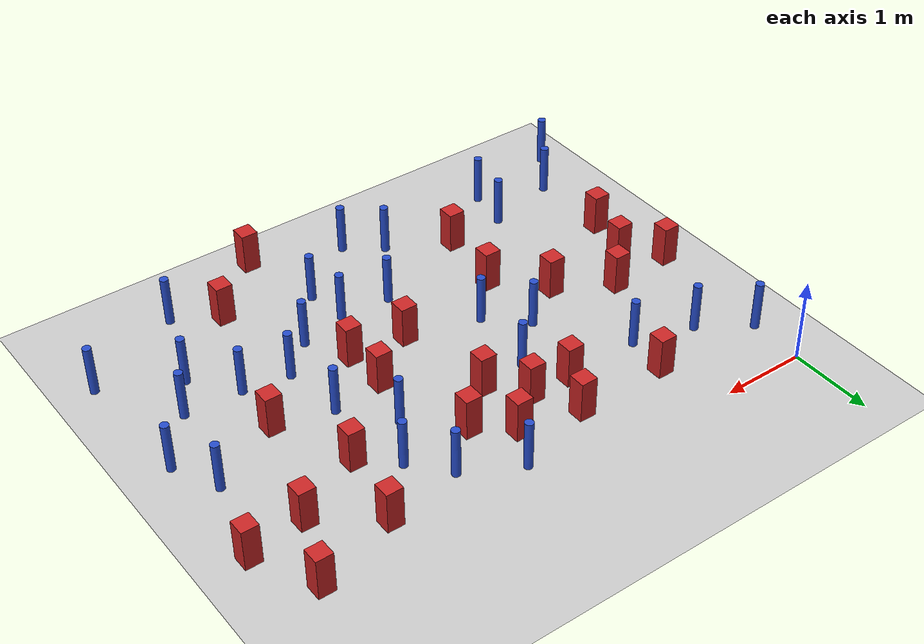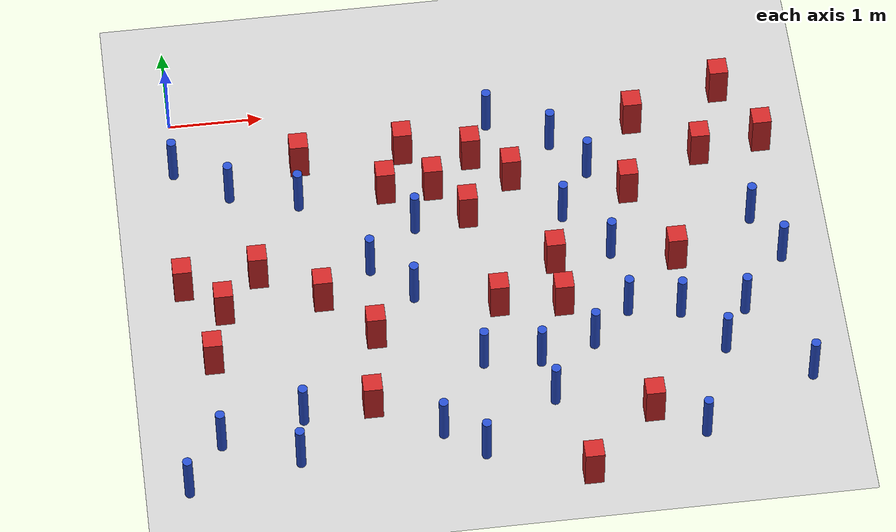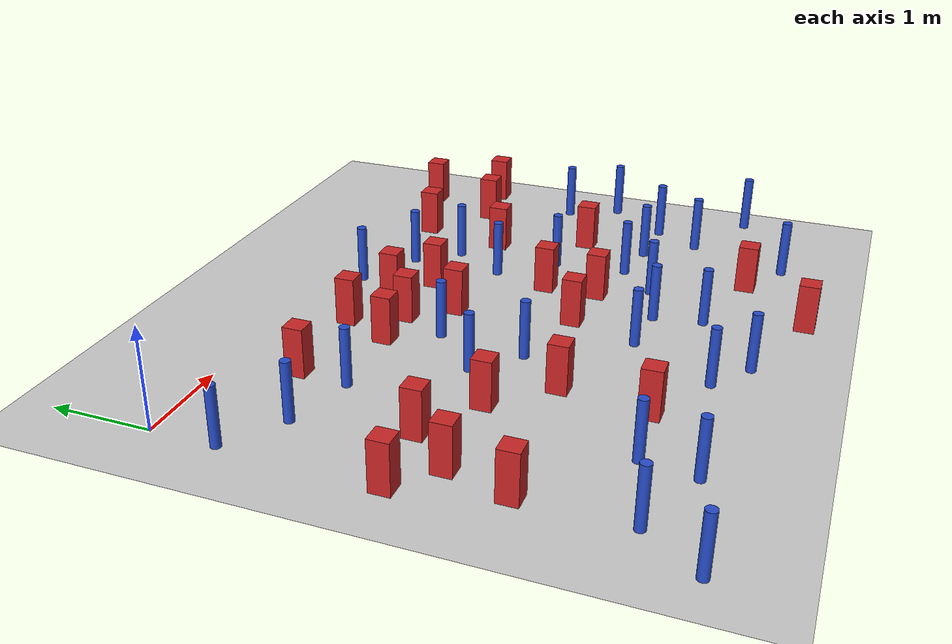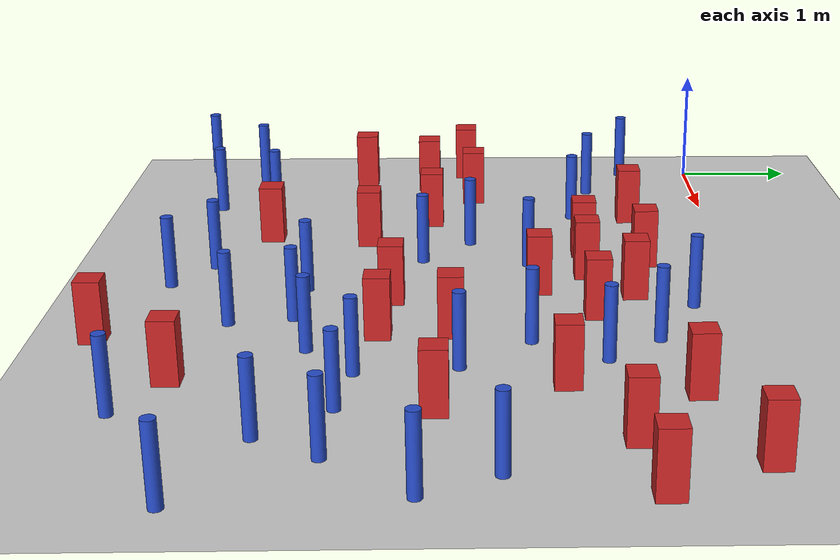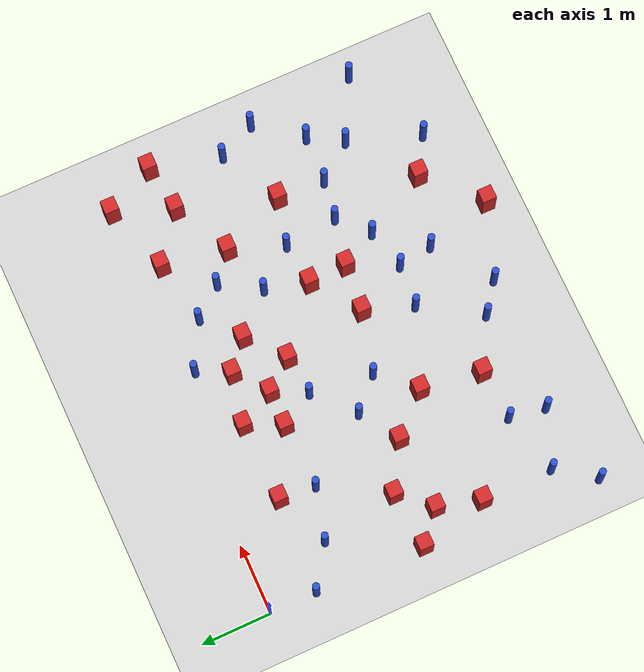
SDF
<sdf version="1.6">
 <world name="default">
  <model name="ground_plane">
   <static>1</static>
   <link name="link">
    <collision name="collision">
     <geometry><plane><normal>0 0 1</normal><size>100 100</size></plane></geometry>
     <surface><friction><ode><mu>100</mu><mu2>50</mu2></ode></friction></surface>
    </collision>
    <visual name="visual">
     <cast_shadows>0</cast_shadows>
     <geometry><plane><normal>0 0 1</normal><size>100 100</size></plane></geometry>
     <material>
      <ambient>1.0 1.0 1.0 1.0</ambient>
      <diffuse>0.8 0.8 0.8 1.0</diffuse>
      <specular>0.01 0.01 0.01 1.000000</specular>
     </material>
    </visual>
   </link>
  </model>
  <model name="square_post_obstacle12">
   <static>true</static>
   <pose>3.16215896326 -0.851828893414 1.91545236811e-07 -7.35059704564e-06 1.12565212e-07 2.39332434364e-05</pose>
   <link name="link">
    <pose>0 0 0.25 0 -0 0</pose>
    <inertial>
     <mass>100</mass>
     <inertia>
      <ixx>0.166667</ixx>
      <ixy>0</ixy>
      <ixz>0</ixz>
      <iyy>0.166667</iyy>
      <iyz>0</iyz>
      <izz>0.166667</izz>
     </inertia>
    </inertial>
    <collision name="collision"><geometry><box><size>.2 .2 .5</size></box></geometry></collision>
    <visual name="visual">
     <geometry><box><size>.2 .2 .5</size></box></geometry>
     <material>
      <script><name>Gazebo/Red</name><uri>file://media/materials/scripts/gazebo.material</uri></script>
     </material>
    </visual>
   </link>
  </model>
  <model name="square_post_obstacle13">
   <static>true</static>
   <pose>2.21254775683 -1.19619095075 1.91545236811e-07 -7.35059704564e-06 1.12565212e-07 2.39332434364e-05</pose>
   <link name="link">
    <pose>0 0 0.25 0 -0 0</pose>
    <inertial>
     <mass>100</mass>
     <inertia>
      <ixx>0.166667</ixx>
      <ixy>0</ixy>
      <ixz>0</ixz>
      <iyy>0.166667</iyy>
      <iyz>0</iyz>
      <izz>0.166667</izz>
     </inertia>
    </inertial>
    <collision name="collision"><geometry><box><size>.2 .2 .5</size></box></geometry></collision>
    <visual name="visual">
     <geometry><box><size>.2 .2 .5</size></box></geometry>
     <material>
      <script><name>Gazebo/Red</name><uri>file://media/materials/scripts/gazebo.material</uri></script>
     </material>
    </visual>
   </link>
  </model>
  <model name="square_post_obstacle17">
   <static>true</static>
   <pose>4.93993323977 -0.584105912174 1.91545236811e-07 -7.35059704564e-06 1.12565212e-07 2.39332434364e-05</pose>
   <link name="link">
    <pose>0 0 0.25 0 -0 0</pose>
    <inertial>
     <mass>100</mass>
     <inertia>
      <ixx>0.166667</ixx>
      <ixy>0</ixy>
      <ixz>0</ixz>
      <iyy>0.166667</iyy>
      <iyz>0</iyz>
      <izz>0.166667</izz>
     </inertia>
    </inertial>
    <collision name="collision"><geometry><box><size>.2 .2 .5</size></box></geometry></collision>
    <visual name="visual">
     <geometry><box><size>.2 .2 .5</size></box></geometry>
     <material>
      <script><name>Gazebo/Red</name><uri>file://media/materials/scripts/gazebo.material</uri></script>
     </material>
    </visual>
   </link>
  </model>
  <model name="pole_obstacle14">
   <static>true</static>
   <pose>-0.192761047995 -4.72084093875 7.38925637345e-09 -8.47170692799e-08 1.24976765068e-08 -1.74513093018e-07</pose>
   <link name="link">
    <pose>0 0 0.3 0 -0 0</pose>
    <inertial>
     <mass>1</mass>
     <inertia><ixx>0.145833</ixx><ixy>0</ixy><ixz>0</ixz><iyy>0.145833</iyy><iyz>0</iyz><izz>0.125</izz></inertia>
    </inertial>
    <collision name="collision">
     <geometry><cylinder><radius>0.05</radius><length>.6</length></cylinder></geometry>
    </collision>
    <visual name="visual">
     <geometry><cylinder><radius>0.05</radius><length>.6</length></cylinder></geometry>
     <material>
      <script><name>Gazebo/Blue</name><uri>file://media/materials/scripts/gazebo.material</uri></script>
     </material>
    </visual>
   </link>
  </model>
  <model name="square_post_obstacle24">
   <static>true</static>
   <pose>-0.0370714918468 -2.20190636774 1.91545236811e-07 -7.35059704564e-06 1.12565212e-07 2.39332434364e-05</pose>
   <link name="link">
    <pose>0 0 0.25 0 -0 0</pose>
    <inertial>
     <mass>100</mass>
     <inertia>
      <ixx>0.166667</ixx>
      <ixy>0</ixy>
      <ixz>0</ixz>
      <iyy>0.166667</iyy>
      <iyz>0</iyz>
      <izz>0.166667</izz>
     </inertia>
    </inertial>
    <collision name="collision"><geometry><box><size>.2 .2 .5</size></box></geometry></collision>
    <visual name="visual">
     <geometry><box><size>.2 .2 .5</size></box></geometry>
     <material>
      <script><name>Gazebo/Red</name><uri>file://media/materials/scripts/gazebo.material</uri></script>
     </material>
    </visual>
   </link>
  </model>
  <model name="square_post_obstacle25">
   <static>true</static>
   <pose>1.90954830478 -3.0507660724 1.91545236811e-07 -7.35059704564e-06 1.12565212e-07 2.39332434364e-05</pose>
   <link name="link">
    <pose>0 0 0.25 0 -0 0</pose>
    <inertial>
     <mass>100</mass>
     <inertia>
      <ixx>0.166667</ixx>
      <ixy>0</ixy>
      <ixz>0</ixz>
      <iyy>0.166667</iyy>
      <iyz>0</iyz>
      <izz>0.166667</izz>
     </inertia>
    </inertial>
    <collision name="collision"><geometry><box><size>.2 .2 .5</size></box></geometry></collision>
    <visual name="visual">
     <geometry><box><size>.2 .2 .5</size></box></geometry>
     <material>
      <script><name>Gazebo/Red</name><uri>file://media/materials/scripts/gazebo.material</uri></script>
     </material>
    </visual>
   </link>
  </model>
  <model name="pole_obstacle29">
   <static>true</static>
   <pose>0.557280738302 -1.03713041273 7.38925637345e-09 -8.47170692799e-08 1.24976765037e-08 -1.74513093019e-07</pose>
   <link name="link">
    <pose>0 0 0.3 0 -0 0</pose>
    <inertial>
     <mass>1</mass>
     <inertia><ixx>0.145833</ixx><ixy>0</ixy><ixz>0</ixz><iyy>0.145833</iyy><iyz>0</iyz><izz>0.125</izz></inertia>
    </inertial>
    <collision name="collision">
     <geometry><cylinder><radius>0.05</radius><length>.6</length></cylinder></geometry>
    </collision>
    <visual name="visual">
     <geometry><cylinder><radius>0.05</radius><length>.6</length></cylinder></geometry>
     <material>
      <script><name>Gazebo/Blue</name><uri>file://media/materials/scripts/gazebo.material</uri></script>
     </material>
    </visual>
   </link>
  </model>
  <model name="pole_obstacle51">
   <static>true</static>
   <pose>1.94644630929 -2.16776729743 7.38925637345e-09 -8.47170692799e-08 1.24976765053e-08 -1.74513093017e-07</pose>
   <link name="link">
    <pose>0 0 0.3 0 -0 0</pose>
    <inertial>
     <mass>1</mass>
     <inertia><ixx>0.145833</ixx><ixy>0</ixy><ixz>0</ixz><iyy>0.145833</iyy><iyz>0</iyz><izz>0.125</izz></inertia>
    </inertial>
    <collision name="collision">
     <geometry><cylinder><radius>0.05</radius><length>.6</length></cylinder></geometry>
    </collision>
    <visual name="visual">
     <geometry><cylinder><radius>0.05</radius><length>.6</length></cylinder></geometry>
     <material>
      <script><name>Gazebo/Blue</name><uri>file://media/materials/scripts/gazebo.material</uri></script>
     </material>
    </visual>
   </link>
  </model>
  <model name="pole_obstacle56">
   <static>true</static>
   <pose>5.52481239268 -3.60699303117 7.38925637345e-09 -8.47170692798e-08 1.24976764937e-08 -1.74513093023e-07</pose>
   <link name="link">
    <pose>0 0 0.3 0 -0 0</pose>
    <inertial>
     <mass>1</mass>
     <inertia><ixx>0.145833</ixx><ixy>0</ixy><ixz>0</ixz><iyy>0.145833</iyy><iyz>0</iyz><izz>0.125</izz></inertia>
    </inertial>
    <collision name="collision">
     <geometry><cylinder><radius>0.05</radius><length>.6</length></cylinder></geometry>
    </collision>
    <visual name="visual">
     <geometry><cylinder><radius>0.05</radius><length>.6</length></cylinder></geometry>
     <material>
      <script><name>Gazebo/Blue</name><uri>file://media/materials/scripts/gazebo.material</uri></script>
     </material>
    </visual>
   </link>
  </model>
  <model name="pole_obstacle59">
   <static>true</static>
   <pose>1.05890238541 -3.9743473748 7.38925637345e-09 -8.471706928e-08 1.24976765103e-08 -1.74513093014e-07</pose>
   <link name="link">
    <pose>0 0 0.3 0 -0 0</pose>
    <inertial>
     <mass>1</mass>
     <inertia><ixx>0.145833</ixx><ixy>0</ixy><ixz>0</ixz><iyy>0.145833</iyy><iyz>0</iyz><izz>0.125</izz></inertia>
    </inertial>
    <collision name="collision">
     <geometry><cylinder><radius>0.05</radius><length>.6</length></cylinder></geometry>
    </collision>
    <visual name="visual">
     <geometry><cylinder><radius>0.05</radius><length>.6</length></cylinder></geometry>
     <material>
      <script><name>Gazebo/Blue</name><uri>file://media/materials/scripts/gazebo.material</uri></script>
     </material>
    </visual>
   </link>
  </model>
  <model name="pole_obstacle63">
   <static>true</static>
   <pose>6.37486377922 -4.04856052572 7.38925637345e-09 -8.47170692796e-08 1.24976764791e-08 -1.74513093031e-07</pose>
   <link name="link">
    <pose>0 0 0.3 0 -0 0</pose>
    <inertial>
     <mass>1</mass>
     <inertia><ixx>0.145833</ixx><ixy>0</ixy><ixz>0</ixz><iyy>0.145833</iyy><iyz>0</iyz><izz>0.125</izz></inertia>
    </inertial>
    <collision name="collision">
     <geometry><cylinder><radius>0.05</radius><length>.6</length></cylinder></geometry>
    </collision>
    <visual name="visual">
     <geometry><cylinder><radius>0.05</radius><length>.6</length></cylinder></geometry>
     <material>
      <script><name>Gazebo/Blue</name><uri>file://media/materials/scripts/gazebo.material</uri></script>
     </material>
    </visual>
   </link>
  </model>
  <model name="square_post_obstacle67">
   <static>true</static>
   <pose>0.364031468398 -2.55769582153 1.91545236811e-07 -7.35059704564e-06 1.12565212e-07 2.39332434364e-05</pose>
   <link name="link">
    <pose>0 0 0.25 0 -0 0</pose>
    <inertial>
     <mass>100</mass>
     <inertia>
      <ixx>0.166667</ixx>
      <ixy>0</ixy>
      <ixz>0</ixz>
      <iyy>0.166667</iyy>
      <iyz>0</iyz>
      <izz>0.166667</izz>
     </inertia>
    </inertial>
    <collision name="collision"><geometry><box><size>.2 .2 .5</size></box></geometry></collision>
    <visual name="visual">
     <geometry><box><size>.2 .2 .5</size></box></geometry>
     <material>
      <script><name>Gazebo/Red</name><uri>file://media/materials/scripts/gazebo.material</uri></script>
     </material>
    </visual>
   </link>
  </model>
  <model name="pole_obstacle69">
   <static>true</static>
   <pose>2.47459224412 -4.31536995979 7.38925637345e-09 -8.47170692798e-08 1.24976765033e-08 -1.74513093019e-07</pose>
   <link name="link">
    <pose>0 0 0.3 0 -0 0</pose>
    <inertial>
     <mass>1</mass>
     <inertia><ixx>0.145833</ixx><ixy>0</ixy><ixz>0</ixz><iyy>0.145833</iyy><iyz>0</iyz><izz>0.125</izz></inertia>
    </inertial>
    <collision name="collision">
     <geometry><cylinder><radius>0.05</radius><length>.6</length></cylinder></geometry>
    </collision>
    <visual name="visual">
     <geometry><cylinder><radius>0.05</radius><length>.6</length></cylinder></geometry>
     <material>
      <script><name>Gazebo/Blue</name><uri>file://media/materials/scripts/gazebo.material</uri></script>
     </material>
    </visual>
   </link>
  </model>
  <model name="pole_obstacle71">
   <static>true</static>
   <pose>5.79900119219 -3.13846601403 7.38925637345e-09 -8.47170692798e-08 1.24976764937e-08 -1.74513093023e-07</pose>
   <link name="link">
    <pose>0 0 0.3 0 -0 0</pose>
    <inertial>
     <mass>1</mass>
     <inertia><ixx>0.145833</ixx><ixy>0</ixy><ixz>0</ixz><iyy>0.145833</iyy><iyz>0</iyz><izz>0.125</izz></inertia>
    </inertial>
    <collision name="collision">
     <geometry><cylinder><radius>0.05</radius><length>.6</length></cylinder></geometry>
    </collision>
    <visual name="visual">
     <geometry><cylinder><radius>0.05</radius><length>.6</length></cylinder></geometry>
     <material>
      <script><name>Gazebo/Blue</name><uri>file://media/materials/scripts/gazebo.material</uri></script>
     </material>
    </visual>
   </link>
  </model>
  <model name="pole_obstacle72">
   <static>true</static>
   <pose>2.99181409538 -3.49242293006 7.38925637345e-09 -8.47170692798e-08 1.24976764939e-08 -1.74513093025e-07</pose>
   <link name="link">
    <pose>0 0 0.3 0 -0 0</pose>
    <inertial>
     <mass>1</mass>
     <inertia><ixx>0.145833</ixx><ixy>0</ixy><ixz>0</ixz><iyy>0.145833</iyy><iyz>0</iyz><izz>0.125</izz></inertia>
    </inertial>
    <collision name="collision">
     <geometry><cylinder><radius>0.05</radius><length>.6</length></cylinder></geometry>
    </collision>
    <visual name="visual">
     <geometry><cylinder><radius>0.05</radius><length>.6</length></cylinder></geometry>
     <material>
      <script><name>Gazebo/Blue</name><uri>file://media/materials/scripts/gazebo.material</uri></script>
     </material>
    </visual>
   </link>
  </model>
  <model name="pole_obstacle75">
   <static>true</static>
   <pose>4.49496236078 -2.25572692038 7.38925637345e-09 -8.47170692798e-08 1.24976764937e-08 -1.74513093023e-07</pose>
   <link name="link">
    <pose>0 0 0.3 0 -0 0</pose>
    <inertial>
     <mass>1</mass>
     <inertia><ixx>0.145833</ixx><ixy>0</ixy><ixz>0</ixz><iyy>0.145833</iyy><iyz>0</iyz><izz>0.125</izz></inertia>
    </inertial>
    <collision name="collision">
     <geometry><cylinder><radius>0.05</radius><length>.6</length></cylinder></geometry>
    </collision>
    <visual name="visual">
     <geometry><cylinder><radius>0.05</radius><length>.6</length></cylinder></geometry>
     <material>
      <script><name>Gazebo/Blue</name><uri>file://media/materials/scripts/gazebo.material</uri></script>
     </material>
    </visual>
   </link>
  </model>
  <model name="square_post_obstacle77">
   <static>true</static>
   <pose>0.196807844034 -3.16989307366 1.91545236811e-07 -7.35059704564e-06 1.12565212e-07 2.39332434364e-05</pose>
   <link name="link">
    <pose>0 0 0.25 0 -0 0</pose>
    <inertial>
     <mass>100</mass>
     <inertia>
      <ixx>0.166667</ixx>
      <ixy>0</ixy>
      <ixz>0</ixz>
      <iyy>0.166667</iyy>
      <iyz>0</iyz>
      <izz>0.166667</izz>
     </inertia>
    </inertial>
    <collision name="collision"><geometry><box><size>.2 .2 .5</size></box></geometry></collision>
    <visual name="visual">
     <geometry><box><size>.2 .2 .5</size></box></geometry>
     <material>
      <script><name>Gazebo/Red</name><uri>file://media/materials/scripts/gazebo.material</uri></script>
     </material>
    </visual>
   </link>
  </model>
  <model name="pole_obstacle79">
   <static>true</static>
   <pose>3.39210028791 -0.403522626479 7.38925637345e-09 -8.471706928e-08 1.24976765172e-08 -1.74513093013e-07</pose>
   <link name="link">
    <pose>0 0 0.3 0 -0 0</pose>
    <inertial>
     <mass>1</mass>
     <inertia><ixx>0.145833</ixx><ixy>0</ixy><ixz>0</ixz><iyy>0.145833</iyy><iyz>0</iyz><izz>0.125</izz></inertia>
    </inertial>
    <collision name="collision">
     <geometry><cylinder><radius>0.05</radius><length>.6</length></cylinder></geometry>
    </collision>
    <visual name="visual">
     <geometry><cylinder><radius>0.05</radius><length>.6</length></cylinder></geometry>
     <material>
      <script><name>Gazebo/Blue</name><uri>file://media/materials/scripts/gazebo.material</uri></script>
     </material>
    </visual>
   </link>
  </model>
  <model name="pole_obstacle87">
   <static>true</static>
   <pose>4.38406763411 -1.16810369598 7.38925637345e-09 -8.471706928e-08 1.24976765134e-08 -1.74513093015e-07</pose>
   <link name="link">
    <pose>0 0 0.3 0 -0 0</pose>
    <inertial>
     <mass>1</mass>
     <inertia><ixx>0.145833</ixx><ixy>0</ixy><ixz>0</ixz><iyy>0.145833</iyy><iyz>0</iyz><izz>0.125</izz></inertia>
    </inertial>
    <collision name="collision">
     <geometry><cylinder><radius>0.05</radius><length>.6</length></cylinder></geometry>
    </collision>
    <visual name="visual">
     <geometry><cylinder><radius>0.05</radius><length>.6</length></cylinder></geometry>
     <material>
      <script><name>Gazebo/Blue</name><uri>file://media/materials/scripts/gazebo.material</uri></script>
     </material>
    </visual>
   </link>
  </model>
  <model name="square_post_obstacle86">
   <static>true</static>
   <pose>6.28317286158 -0.984443088483 1.91545236811e-07 -7.35059704564e-06 1.12565212e-07 2.39332434364e-05</pose>
   <link name="link">
    <pose>0 0 0.25 0 -0 0</pose>
    <inertial>
     <mass>100</mass>
     <inertia>
      <ixx>0.166667</ixx>
      <ixy>0</ixy>
      <ixz>0</ixz>
      <iyy>0.166667</iyy>
      <iyz>0</iyz>
      <izz>0.166667</izz>
     </inertia>
    </inertial>
    <collision name="collision"><geometry><box><size>.2 .2 .5</size></box></geometry></collision>
    <visual name="visual">
     <geometry><box><size>.2 .2 .5</size></box></geometry>
     <material>
      <script><name>Gazebo/Red</name><uri>file://media/materials/scripts/gazebo.material</uri></script>
     </material>
    </visual>
   </link>
  </model>
  <model name="pole_obstacle101">
   <static>true</static>
   <pose>4.0364401352 -0.749233371579 7.38925637345e-09 -8.471706928e-08 1.24976765147e-08 -1.74513093015e-07</pose>
   <link name="link">
    <pose>0 0 0.3 0 -0 0</pose>
    <inertial>
     <mass>1</mass>
     <inertia><ixx>0.145833</ixx><ixy>0</ixy><ixz>0</ixz><iyy>0.145833</iyy><iyz>0</iyz><izz>0.125</izz></inertia>
    </inertial>
    <collision name="collision">
     <geometry><cylinder><radius>0.05</radius><length>.6</length></cylinder></geometry>
    </collision>
    <visual name="visual">
     <geometry><cylinder><radius>0.05</radius><length>.6</length></cylinder></geometry>
     <material>
      <script><name>Gazebo/Blue</name><uri>file://media/materials/scripts/gazebo.material</uri></script>
     </material>
    </visual>
   </link>
  </model>
  <model name="pole_obstacle108">
   <static>true</static>
   <pose>6.02685979798 -1.98142017567 7.38925637345e-09 -8.47170692801e-08 1.24976765219e-08 -1.74513093009e-07</pose>
   <link name="link">
    <pose>0 0 0.3 0 -0 0</pose>
    <inertial>
     <mass>1</mass>
     <inertia><ixx>0.145833</ixx><ixy>0</ixy><ixz>0</ixz><iyy>0.145833</iyy><iyz>0</iyz><izz>0.125</izz></inertia>
    </inertial>
    <collision name="collision">
     <geometry><cylinder><radius>0.05</radius><length>.6</length></cylinder></geometry>
    </collision>
    <visual name="visual">
     <geometry><cylinder><radius>0.05</radius><length>.6</length></cylinder></geometry>
     <material>
      <script><name>Gazebo/Blue</name><uri>file://media/materials/scripts/gazebo.material</uri></script>
     </material>
    </visual>
   </link>
  </model>
  <model name="pole_obstacle113">
   <static>true</static>
   <pose>2.88236965268 -4.61901614844 7.38925637345e-09 -8.47170692798e-08 1.24976765033e-08 -1.74513093019e-07</pose>
   <link name="link">
    <pose>0 0 0.3 0 -0 0</pose>
    <inertial>
     <mass>1</mass>
     <inertia><ixx>0.145833</ixx><ixy>0</ixy><ixz>0</ixz><iyy>0.145833</iyy><iyz>0</iyz><izz>0.125</izz></inertia>
    </inertial>
    <collision name="collision">
     <geometry><cylinder><radius>0.05</radius><length>.6</length></cylinder></geometry>
    </collision>
    <visual name="visual">
     <geometry><cylinder><radius>0.05</radius><length>.6</length></cylinder></geometry>
     <material>
      <script><name>Gazebo/Blue</name><uri>file://media/materials/scripts/gazebo.material</uri></script>
     </material>
    </visual>
   </link>
  </model>
  <model name="square_post_obstacle103">
   <static>true</static>
   <pose>5.60131226832 -1.08450716508 1.91545236811e-07 -7.35059704564e-06 1.12565212e-07 2.39332434364e-05</pose>
   <link name="link">
    <pose>0 0 0.25 0 -0 0</pose>
    <inertial>
     <mass>100</mass>
     <inertia>
      <ixx>0.166667</ixx>
      <ixy>0</ixy>
      <ixz>0</ixz>
      <iyy>0.166667</iyy>
      <iyz>0</iyz>
      <izz>0.166667</izz>
     </inertia>
    </inertial>
    <collision name="collision"><geometry><box><size>.2 .2 .5</size></box></geometry></collision>
    <visual name="visual">
     <geometry><box><size>.2 .2 .5</size></box></geometry>
     <material>
      <script><name>Gazebo/Red</name><uri>file://media/materials/scripts/gazebo.material</uri></script>
     </material>
    </visual>
   </link>
  </model>
  <model name="square_post_obstacle112">
   <static>true</static>
   <pose>1.33789278855 -0.72065602648 1.91545236811e-07 -7.35059704564e-06 1.12565212e-07 2.39332434364e-05</pose>
   <link name="link">
    <pose>0 0 0.25 0 -0 0</pose>
    <inertial>
     <mass>100</mass>
     <inertia>
      <ixx>0.166667</ixx>
      <ixy>0</ixy>
      <ixz>0</ixz>
      <iyy>0.166667</iyy>
      <iyz>0</iyz>
      <izz>0.166667</izz>
     </inertia>
    </inertial>
    <collision name="collision"><geometry><box><size>.2 .2 .5</size></box></geometry></collision>
    <visual name="visual">
     <geometry><box><size>.2 .2 .5</size></box></geometry>
     <material>
      <script><name>Gazebo/Red</name><uri>file://media/materials/scripts/gazebo.material</uri></script>
     </material>
    </visual>
   </link>
  </model>
  <model name="pole_obstacle135">
   <static>true</static>
   <pose>5.17050635692 -4.62187942249 7.38925637345e-09 -8.47170692796e-08 1.24976764786e-08 -1.74513093032e-07</pose>
   <link name="link">
    <pose>0 0 0.3 0 -0 0</pose>
    <inertial>
     <mass>1</mass>
     <inertia><ixx>0.145833</ixx><ixy>0</ixy><ixz>0</ixz><iyy>0.145833</iyy><iyz>0</iyz><izz>0.125</izz></inertia>
    </inertial>
    <collision name="collision">
     <geometry><cylinder><radius>0.05</radius><length>.6</length></cylinder></geometry>
    </collision>
    <visual name="visual">
     <geometry><cylinder><radius>0.05</radius><length>.6</length></cylinder></geometry>
     <material>
      <script><name>Gazebo/Blue</name><uri>file://media/materials/scripts/gazebo.material</uri></script>
     </material>
    </visual>
   </link>
  </model>
  <model name="square_post_obstacle120">
   <static>true</static>
   <pose>5.16645562176 -2.42343122033 1.91545236811e-07 -7.35059704564e-06 1.12565212e-07 2.39332434364e-05</pose>
   <link name="link">
    <pose>0 0 0.25 0 -0 0</pose>
    <inertial>
     <mass>100</mass>
     <inertia>
      <ixx>0.166667</ixx>
      <ixy>0</ixy>
      <ixz>0</ixz>
      <iyy>0.166667</iyy>
      <iyz>0</iyz>
      <izz>0.166667</izz>
     </inertia>
    </inertial>
    <collision name="collision"><geometry><box><size>.2 .2 .5</size></box></geometry></collision>
    <visual name="visual">
     <geometry><box><size>.2 .2 .5</size></box></geometry>
     <material>
      <script><name>Gazebo/Red</name><uri>file://media/materials/scripts/gazebo.material</uri></script>
     </material>
    </visual>
   </link>
  </model>
  <model name="square_post_obstacle125">
   <static>true</static>
   <pose>1.78222479238 -3.91550690715 1.91545236811e-07 -7.35059704564e-06 1.12565212e-07 2.39332434364e-05</pose>
   <link name="link">
    <pose>0 0 0.25 0 -0 0</pose>
    <inertial>
     <mass>100</mass>
     <inertia>
      <ixx>0.166667</ixx>
      <ixy>0</ixy>
      <ixz>0</ixz>
      <iyy>0.166667</iyy>
      <iyz>0</iyz>
      <izz>0.166667</izz>
     </inertia>
    </inertial>
    <collision name="collision"><geometry><box><size>.2 .2 .5</size></box></geometry></collision>
    <visual name="visual">
     <geometry><box><size>.2 .2 .5</size></box></geometry>
     <material>
      <script><name>Gazebo/Red</name><uri>file://media/materials/scripts/gazebo.material</uri></script>
     </material>
    </visual>
   </link>
  </model>
  <model name="pole_obstacle140">
   <static>true</static>
   <pose>6.28584198457 -2.5175639227 7.38925637345e-09 -8.47170692798e-08 1.24976764937e-08 -1.74513093023e-07</pose>
   <link name="link">
    <pose>0 0 0.3 0 -0 0</pose>
    <inertial>
     <mass>1</mass>
     <inertia><ixx>0.145833</ixx><ixy>0</ixy><ixz>0</ixz><iyy>0.145833</iyy><iyz>0</iyz><izz>0.125</izz></inertia>
    </inertial>
    <collision name="collision">
     <geometry><cylinder><radius>0.05</radius><length>.6</length></cylinder></geometry>
    </collision>
    <visual name="visual">
     <geometry><cylinder><radius>0.05</radius><length>.6</length></cylinder></geometry>
     <material>
      <script><name>Gazebo/Blue</name><uri>file://media/materials/scripts/gazebo.material</uri></script>
     </material>
    </visual>
   </link>
  </model>
  <model name="square_post_obstacle131">
   <static>true</static>
   <pose>3.55809606893 -1.18438213271 1.91545236811e-07 -7.35059704564e-06 1.12565212e-07 2.39332434364e-05</pose>
   <link name="link">
    <pose>0 0 0.25 0 -0 0</pose>
    <inertial>
     <mass>100</mass>
     <inertia>
      <ixx>0.166667</ixx>
      <ixy>0</ixy>
      <ixz>0</ixz>
      <iyy>0.166667</iyy>
      <iyz>0</iyz>
      <izz>0.166667</izz>
     </inertia>
    </inertial>
    <collision name="collision"><geometry><box><size>.2 .2 .5</size></box></geometry></collision>
    <visual name="visual">
     <geometry><box><size>.2 .2 .5</size></box></geometry>
     <material>
      <script><name>Gazebo/Red</name><uri>file://media/materials/scripts/gazebo.material</uri></script>
     </material>
    </visual>
   </link>
  </model>
  <model name="square_post_obstacle132">
   <static>true</static>
   <pose>0.760466334039 -2.13311124034 1.91545236811e-07 -7.35059704564e-06 1.12565212e-07 2.39332434364e-05</pose>
   <link name="link">
    <pose>0 0 0.25 0 -0 0</pose>
    <inertial>
     <mass>100</mass>
     <inertia>
      <ixx>0.166667</ixx>
      <ixy>0</ixy>
      <ixz>0</ixz>
      <iyy>0.166667</iyy>
      <iyz>0</iyz>
      <izz>0.166667</izz>
     </inertia>
    </inertial>
    <collision name="collision"><geometry><box><size>.2 .2 .5</size></box></geometry></collision>
    <visual name="visual">
     <geometry><box><size>.2 .2 .5</size></box></geometry>
     <material>
      <script><name>Gazebo/Red</name><uri>file://media/materials/scripts/gazebo.material</uri></script>
     </material>
    </visual>
   </link>
  </model>
  <model name="square_post_obstacle135">
   <static>true</static>
   <pose>2.71734218096 -1.20793297216 1.91545236811e-07 -7.35059704564e-06 1.12565212e-07 2.39332434364e-05</pose>
   <link name="link">
    <pose>0 0 0.25 0 -0 0</pose>
    <inertial>
     <mass>100</mass>
     <inertia>
      <ixx>0.166667</ixx>
      <ixy>0</ixy>
      <ixz>0</ixz>
      <iyy>0.166667</iyy>
      <iyz>0</iyz>
      <izz>0.166667</izz>
     </inertia>
    </inertial>
    <collision name="collision"><geometry><box><size>.2 .2 .5</size></box></geometry></collision>
    <visual name="visual">
     <geometry><box><size>.2 .2 .5</size></box></geometry>
     <material>
      <script><name>Gazebo/Red</name><uri>file://media/materials/scripts/gazebo.material</uri></script>
     </material>
    </visual>
   </link>
  </model>
  <model name="square_post_obstacle136">
   <static>true</static>
   <pose>3.23441392628 -2.79922689671 1.91545236811e-07 -7.35059704564e-06 1.12565212e-07 2.39332434364e-05</pose>
   <link name="link">
    <pose>0 0 0.25 0 -0 0</pose>
    <inertial>
     <mass>100</mass>
     <inertia>
      <ixx>0.166667</ixx>
      <ixy>0</ixy>
      <ixz>0</ixz>
      <iyy>0.166667</iyy>
      <iyz>0</iyz>
      <izz>0.166667</izz>
     </inertia>
    </inertial>
    <collision name="collision"><geometry><box><size>.2 .2 .5</size></box></geometry></collision>
    <visual name="visual">
     <geometry><box><size>.2 .2 .5</size></box></geometry>
     <material>
      <script><name>Gazebo/Red</name><uri>file://media/materials/scripts/gazebo.material</uri></script>
     </material>
    </visual>
   </link>
  </model>
  <model name="square_post_obstacle137">
   <static>true</static>
   <pose>3.9364123904 -4.99609593407 1.91545236811e-07 -7.35059704564e-06 1.12565212e-07 2.39332434364e-05</pose>
   <link name="link">
    <pose>0 0 0.25 0 -0 0</pose>
    <inertial>
     <mass>100</mass>
     <inertia>
      <ixx>0.166667</ixx>
      <ixy>0</ixy>
      <ixz>0</ixz>
      <iyy>0.166667</iyy>
      <iyz>0</iyz>
      <izz>0.166667</izz>
     </inertia>
    </inertial>
    <collision name="collision"><geometry><box><size>.2 .2 .5</size></box></geometry></collision>
    <visual name="visual">
     <geometry><box><size>.2 .2 .5</size></box></geometry>
     <material>
      <script><name>Gazebo/Red</name><uri>file://media/materials/scripts/gazebo.material</uri></script>
     </material>
    </visual>
   </link>
  </model>
  <model name="pole_obstacle153">
   <static>true</static>
   <pose>0.976956030167 -4.49054599732 7.38925637345e-09 -8.471706928e-08 1.24976765144e-08 -1.74513093012e-07</pose>
   <link name="link">
    <pose>0 0 0.3 0 -0 0</pose>
    <inertial>
     <mass>1</mass>
     <inertia><ixx>0.145833</ixx><ixy>0</ixy><ixz>0</ixz><iyy>0.145833</iyy><iyz>0</iyz><izz>0.125</izz></inertia>
    </inertial>
    <collision name="collision">
     <geometry><cylinder><radius>0.05</radius><length>.6</length></cylinder></geometry>
    </collision>
    <visual name="visual">
     <geometry><cylinder><radius>0.05</radius><length>.6</length></cylinder></geometry>
     <material>
      <script><name>Gazebo/Blue</name><uri>file://media/materials/scripts/gazebo.material</uri></script>
     </material>
    </visual>
   </link>
  </model>
  <model name="square_post_obstacle142">
   <static>true</static>
   <pose>4.66196165271 -4.30822239091 1.91545236811e-07 -7.35059704564e-06 1.12565212e-07 2.39332434364e-05</pose>
   <link name="link">
    <pose>0 0 0.25 0 -0 0</pose>
    <inertial>
     <mass>100</mass>
     <inertia>
      <ixx>0.166667</ixx>
      <ixy>0</ixy>
      <ixz>0</ixz>
      <iyy>0.166667</iyy>
      <iyz>0</iyz>
      <izz>0.166667</izz>
     </inertia>
    </inertial>
    <collision name="collision"><geometry><box><size>.2 .2 .5</size></box></geometry></collision>
    <visual name="visual">
     <geometry><box><size>.2 .2 .5</size></box></geometry>
     <material>
      <script><name>Gazebo/Red</name><uri>file://media/materials/scripts/gazebo.material</uri></script>
     </material>
    </visual>
   </link>
  </model>
  <model name="pole_obstacle155">
   <static>true</static>
   <pose>3.59144485451 -3.54137573217 7.38925637345e-09 -8.47170692798e-08 1.24976764939e-08 -1.74513093025e-07</pose>
   <link name="link">
    <pose>0 0 0.3 0 -0 0</pose>
    <inertial>
     <mass>1</mass>
     <inertia><ixx>0.145833</ixx><ixy>0</ixy><ixz>0</ixz><iyy>0.145833</iyy><iyz>0</iyz><izz>0.125</izz></inertia>
    </inertial>
    <collision name="collision">
     <geometry><cylinder><radius>0.05</radius><length>.6</length></cylinder></geometry>
    </collision>
    <visual name="visual">
     <geometry><cylinder><radius>0.05</radius><length>.6</length></cylinder></geometry>
     <material>
      <script><name>Gazebo/Blue</name><uri>file://media/materials/scripts/gazebo.material</uri></script>
     </material>
    </visual>
   </link>
  </model>
  <model name="pole_obstacle158">
   <static>true</static>
   <pose>2.36721085735 -2.57049578974 7.38925637345e-09 -8.47170692798e-08 1.24976764939e-08 -1.74513093025e-07</pose>
   <link name="link">
    <pose>0 0 0.3 0 -0 0</pose>
    <inertial>
     <mass>1</mass>
     <inertia><ixx>0.145833</ixx><ixy>0</ixy><ixz>0</ixz><iyy>0.145833</iyy><iyz>0</iyz><izz>0.125</izz></inertia>
    </inertial>
    <collision name="collision">
     <geometry><cylinder><radius>0.05</radius><length>.6</length></cylinder></geometry>
    </collision>
    <visual name="visual">
     <geometry><cylinder><radius>0.05</radius><length>.6</length></cylinder></geometry>
     <material>
      <script><name>Gazebo/Blue</name><uri>file://media/materials/scripts/gazebo.material</uri></script>
     </material>
    </visual>
   </link>
  </model>
  <model name="pole_obstacle160">
   <static>true</static>
   <pose>5.12252147003 -3.10255519735 7.38925637345e-09 -8.47170692798e-08 1.24976764937e-08 -1.74513093023e-07</pose>
   <link name="link">
    <pose>0 0 0.3 0 -0 0</pose>
    <inertial>
     <mass>1</mass>
     <inertia><ixx>0.145833</ixx><ixy>0</ixy><ixz>0</ixz><iyy>0.145833</iyy><iyz>0</iyz><izz>0.125</izz></inertia>
    </inertial>
    <collision name="collision">
     <geometry><cylinder><radius>0.05</radius><length>.6</length></cylinder></geometry>
    </collision>
    <visual name="visual">
     <geometry><cylinder><radius>0.05</radius><length>.6</length></cylinder></geometry>
     <material>
      <script><name>Gazebo/Blue</name><uri>file://media/materials/scripts/gazebo.material</uri></script>
     </material>
    </visual>
   </link>
  </model>
  <model name="pole_obstacle163">
   <static>true</static>
   <pose>2.47831289267 -1.68003118734 7.38925637345e-09 -8.471706928e-08 1.24976765152e-08 -1.74513093012e-07</pose>
   <link name="link">
    <pose>0 0 0.3 0 -0 0</pose>
    <inertial>
     <mass>1</mass>
     <inertia><ixx>0.145833</ixx><ixy>0</ixy><ixz>0</ixz><iyy>0.145833</iyy><iyz>0</iyz><izz>0.125</izz></inertia>
    </inertial>
    <collision name="collision">
     <geometry><cylinder><radius>0.05</radius><length>.6</length></cylinder></geometry>
    </collision>
    <visual name="visual">
     <geometry><cylinder><radius>0.05</radius><length>.6</length></cylinder></geometry>
     <material>
      <script><name>Gazebo/Blue</name><uri>file://media/materials/scripts/gazebo.material</uri></script>
     </material>
    </visual>
   </link>
  </model>
  <model name="square_post_obstacle156">
   <static>true</static>
   <pose>5.92356588885 -0.27020507551 1.91545236811e-07 -7.35059704564e-06 1.12565212e-07 2.39332434364e-05</pose>
   <link name="link">
    <pose>0 0 0.25 0 -0 0</pose>
    <inertial>
     <mass>100</mass>
     <inertia>
      <ixx>0.166667</ixx>
      <ixy>0</ixy>
      <ixz>0</ixz>
      <iyy>0.166667</iyy>
      <iyz>0</iyz>
      <izz>0.166667</izz>
     </inertia>
    </inertial>
    <collision name="collision"><geometry><box><size>.2 .2 .5</size></box></geometry></collision>
    <visual name="visual">
     <geometry><box><size>.2 .2 .5</size></box></geometry>
     <material>
      <script><name>Gazebo/Red</name><uri>file://media/materials/scripts/gazebo.material</uri></script>
     </material>
    </visual>
   </link>
  </model>
  <model name="pole_obstacle164">
   <static>true</static>
   <pose>-0.00782811031701 -0.655992276022 7.38925637345e-09 -8.47170692799e-08 1.24976764966e-08 -1.74513093023e-07</pose>
   <link name="link">
    <pose>0 0 0.3 0 -0 0</pose>
    <inertial>
     <mass>1</mass>
     <inertia><ixx>0.145833</ixx><ixy>0</ixy><ixz>0</ixz><iyy>0.145833</iyy><iyz>0</iyz><izz>0.125</izz></inertia>
    </inertial>
    <collision name="collision">
     <geometry><cylinder><radius>0.05</radius><length>.6</length></cylinder></geometry>
    </collision>
    <visual name="visual">
     <geometry><cylinder><radius>0.05</radius><length>.6</length></cylinder></geometry>
     <material>
      <script><name>Gazebo/Blue</name><uri>file://media/materials/scripts/gazebo.material</uri></script>
     </material>
    </visual>
   </link>
  </model>
  <model name="pole_obstacle165">
   <static>true</static>
   <pose>3.67217789065 -4.03505313867 7.38925637345e-09 -8.47170692799e-08 1.24976764995e-08 -1.74513093021e-07</pose>
   <link name="link">
    <pose>0 0 0.3 0 -0 0</pose>
    <inertial>
     <mass>1</mass>
     <inertia><ixx>0.145833</ixx><ixy>0</ixy><ixz>0</ixz><iyy>0.145833</iyy><iyz>0</iyz><izz>0.125</izz></inertia>
    </inertial>
    <collision name="collision">
     <geometry><cylinder><radius>0.05</radius><length>.6</length></cylinder></geometry>
    </collision>
    <visual name="visual">
     <geometry><cylinder><radius>0.05</radius><length>.6</length></cylinder></geometry>
     <material>
      <script><name>Gazebo/Blue</name><uri>file://media/materials/scripts/gazebo.material</uri></script>
     </material>
    </visual>
   </link>
  </model>
  <model name="square_post_obstacle159">
   <static>true</static>
   <pose>3.04627877843 -1.61643865502 1.91545236811e-07 -7.35059704564e-06 1.12565212e-07 2.39332434364e-05</pose>
   <link name="link">
    <pose>0 0 0.25 0 -0 0</pose>
    <inertial>
     <mass>100</mass>
     <inertia>
      <ixx>0.166667</ixx>
      <ixy>0</ixy>
      <ixz>0</ixz>
      <iyy>0.166667</iyy>
      <iyz>0</iyz>
      <izz>0.166667</izz>
     </inertia>
    </inertial>
    <collision name="collision"><geometry><box><size>.2 .2 .5</size></box></geometry></collision>
    <visual name="visual">
     <geometry><box><size>.2 .2 .5</size></box></geometry>
     <material>
      <script><name>Gazebo/Red</name><uri>file://media/materials/scripts/gazebo.material</uri></script>
     </material>
    </visual>
   </link>
  </model>
  <model name="pole_obstacle170">
   <static>true</static>
   <pose>1.28175034059 -1.23332439629 7.38925637345e-09 -8.471706928e-08 1.24976765079e-08 -1.74513093017e-07</pose>
   <link name="link">
    <pose>0 0 0.3 0 -0 0</pose>
    <inertial>
     <mass>1</mass>
     <inertia><ixx>0.145833</ixx><ixy>0</ixy><ixz>0</ixz><iyy>0.145833</iyy><iyz>0</iyz><izz>0.125</izz></inertia>
    </inertial>
    <collision name="collision">
     <geometry><cylinder><radius>0.05</radius><length>.6</length></cylinder></geometry>
    </collision>
    <visual name="visual">
     <geometry><cylinder><radius>0.05</radius><length>.6</length></cylinder></geometry>
     <material>
      <script><name>Gazebo/Blue</name><uri>file://media/materials/scripts/gazebo.material</uri></script>
     </material>
    </visual>
   </link>
  </model>
  <model name="square_post_obstacle165">
   <static>true</static>
   <pose>1.40864352553 -2.51263357941 1.91545236811e-07 -7.35059704564e-06 1.12565212e-07 2.39332434364e-05</pose>
   <link name="link">
    <pose>0 0 0.25 0 -0 0</pose>
    <inertial>
     <mass>100</mass>
     <inertia>
      <ixx>0.166667</ixx>
      <ixy>0</ixy>
      <ixz>0</ixz>
      <iyy>0.166667</iyy>
      <iyz>0</iyz>
      <izz>0.166667</izz>
     </inertia>
    </inertial>
    <collision name="collision"><geometry><box><size>.2 .2 .5</size></box></geometry></collision>
    <visual name="visual">
     <geometry><box><size>.2 .2 .5</size></box></geometry>
     <material>
      <script><name>Gazebo/Red</name><uri>file://media/materials/scripts/gazebo.material</uri></script>
     </material>
    </visual>
   </link>
  </model>
  <model name="pole_obstacle177">
   <static>true</static>
   <pose>0.18811665092 -4.18758737955 7.38925637345e-09 -8.47170692799e-08 1.24976765068e-08 -1.74513093018e-07</pose>
   <link name="link">
    <pose>0 0 0.3 0 -0 0</pose>
    <inertial>
     <mass>1</mass>
     <inertia><ixx>0.145833</ixx><ixy>0</ixy><ixz>0</ixz><iyy>0.145833</iyy><iyz>0</iyz><izz>0.125</izz></inertia>
    </inertial>
    <collision name="collision">
     <geometry><cylinder><radius>0.05</radius><length>.6</length></cylinder></geometry>
    </collision>
    <visual name="visual">
     <geometry><cylinder><radius>0.05</radius><length>.6</length></cylinder></geometry>
     <material>
      <script><name>Gazebo/Blue</name><uri>file://media/materials/scripts/gazebo.material</uri></script>
     </material>
    </visual>
   </link>
  </model>
  <model name="pole_obstacle181">
   <static>true</static>
   <pose>4.17151108053 -3.3873844447 7.38925637345e-09 -8.47170692798e-08 1.24976764937e-08 -1.74513093023e-07</pose>
   <link name="link">
    <pose>0 0 0.3 0 -0 0</pose>
    <inertial>
     <mass>1</mass>
     <inertia><ixx>0.145833</ixx><ixy>0</ixy><ixz>0</ixz><iyy>0.145833</iyy><iyz>0</iyz><izz>0.125</izz></inertia>
    </inertial>
    <collision name="collision">
     <geometry><cylinder><radius>0.05</radius><length>.6</length></cylinder></geometry>
    </collision>
    <visual name="visual">
     <geometry><cylinder><radius>0.05</radius><length>.6</length></cylinder></geometry>
     <material>
      <script><name>Gazebo/Blue</name><uri>file://media/materials/scripts/gazebo.material</uri></script>
     </material>
    </visual>
   </link>
  </model>
  <model name="pole_obstacle185">
   <static>true</static>
   <pose>4.57490823523 -3.01367570048 7.38925637345e-09 -8.47170692798e-08 1.24976764937e-08 -1.74513093023e-07</pose>
   <link name="link">
    <pose>0 0 0.3 0 -0 0</pose>
    <inertial>
     <mass>1</mass>
     <inertia><ixx>0.145833</ixx><ixy>0</ixy><ixz>0</ixz><iyy>0.145833</iyy><iyz>0</iyz><izz>0.125</izz></inertia>
    </inertial>
    <collision name="collision">
     <geometry><cylinder><radius>0.05</radius><length>.6</length></cylinder></geometry>
    </collision>
    <visual name="visual">
     <geometry><cylinder><radius>0.05</radius><length>.6</length></cylinder></geometry>
     <material>
      <script><name>Gazebo/Blue</name><uri>file://media/materials/scripts/gazebo.material</uri></script>
     </material>
    </visual>
   </link>
  </model>
  <model name="pole_obstacle190">
   <static>true</static>
   <pose>4.0518421021 -1.71702215795 7.38925637345e-09 -8.471706928e-08 1.24976765134e-08 -1.74513093015e-07</pose>
   <link name="link">
    <pose>0 0 0.3 0 -0 0</pose>
    <inertial>
     <mass>1</mass>
     <inertia><ixx>0.145833</ixx><ixy>0</ixy><ixz>0</ixz><iyy>0.145833</iyy><iyz>0</iyz><izz>0.125</izz></inertia>
    </inertial>
    <collision name="collision">
     <geometry><cylinder><radius>0.05</radius><length>.6</length></cylinder></geometry>
    </collision>
    <visual name="visual">
     <geometry><cylinder><radius>0.05</radius><length>.6</length></cylinder></geometry>
     <material>
      <script><name>Gazebo/Blue</name><uri>file://media/materials/scripts/gazebo.material</uri></script>
     </material>
    </visual>
   </link>
  </model>
  <model name="square_post_obstacle184">
   <static>true</static>
   <pose>2.44949360374 -0.695583414731 1.91545236811e-07 -7.35059704564e-06 1.12565212e-07 2.39332434364e-05</pose>
   <link name="link">
    <pose>0 0 0.25 0 -0 0</pose>
    <inertial>
     <mass>100</mass>
     <inertia>
      <ixx>0.166667</ixx>
      <ixy>0</ixy>
      <ixz>0</ixz>
      <iyy>0.166667</iyy>
      <iyz>0</iyz>
      <izz>0.166667</izz>
     </inertia>
    </inertial>
    <collision name="collision"><geometry><box><size>.2 .2 .5</size></box></geometry></collision>
    <visual name="visual">
     <geometry><box><size>.2 .2 .5</size></box></geometry>
     <material>
      <script><name>Gazebo/Red</name><uri>file://media/materials/scripts/gazebo.material</uri></script>
     </material>
    </visual>
   </link>
  </model>
  <model name="square_post_obstacle192">
   <static>true</static>
   <pose>3.90776928799 -2.87024867925 1.91545236811e-07 -7.35059704564e-06 1.12565212e-07 2.39332434364e-05</pose>
   <link name="link">
    <pose>0 0 0.25 0 -0 0</pose>
    <inertial>
     <mass>100</mass>
     <inertia>
      <ixx>0.166667</ixx>
      <ixy>0</ixy>
      <ixz>0</ixz>
      <iyy>0.166667</iyy>
      <iyz>0</iyz>
      <izz>0.166667</izz>
     </inertia>
    </inertial>
    <collision name="collision"><geometry><box><size>.2 .2 .5</size></box></geometry></collision>
    <visual name="visual">
     <geometry><box><size>.2 .2 .5</size></box></geometry>
     <material>
      <script><name>Gazebo/Red</name><uri>file://media/materials/scripts/gazebo.material</uri></script>
     </material>
    </visual>
   </link>
  </model>
  <model name="square_post_obstacle195">
   <static>true</static>
   <pose>3.88838515914 -2.320110266 1.91545236811e-07 -7.35059704564e-06 1.12565212e-07 2.39332434364e-05</pose>
   <link name="link">
    <pose>0 0 0.25 0 -0 0</pose>
    <inertial>
     <mass>100</mass>
     <inertia>
      <ixx>0.166667</ixx>
      <ixy>0</ixy>
      <ixz>0</ixz>
      <iyy>0.166667</iyy>
      <iyz>0</iyz>
      <izz>0.166667</izz>
     </inertia>
    </inertial>
    <collision name="collision"><geometry><box><size>.2 .2 .5</size></box></geometry></collision>
    <visual name="visual">
     <geometry><box><size>.2 .2 .5</size></box></geometry>
     <material>
      <script><name>Gazebo/Red</name><uri>file://media/materials/scripts/gazebo.material</uri></script>
     </material>
    </visual>
   </link>
  </model>
  <model name="square_post_obstacle214">
   <static>true</static>
   <pose>4.77515458855 -1.49590853255 1.91545236811e-07 -7.35059704564e-06 1.12565212e-07 2.39332434364e-05</pose>
   <link name="link">
    <pose>0 0 0.25 0 -0 0</pose>
    <inertial>
     <mass>100</mass>
     <inertia>
      <ixx>0.166667</ixx>
      <ixy>0</ixy>
      <ixz>0</ixz>
      <iyy>0.166667</iyy>
      <iyz>0</iyz>
      <izz>0.166667</izz>
     </inertia>
    </inertial>
    <collision name="collision"><geometry><box><size>.2 .2 .5</size></box></geometry></collision>
    <visual name="visual">
     <geometry><box><size>.2 .2 .5</size></box></geometry>
     <material>
      <script><name>Gazebo/Red</name><uri>file://media/materials/scripts/gazebo.material</uri></script>
     </material>
    </visual>
   </link>
  </model>
 </world>
</sdf>
